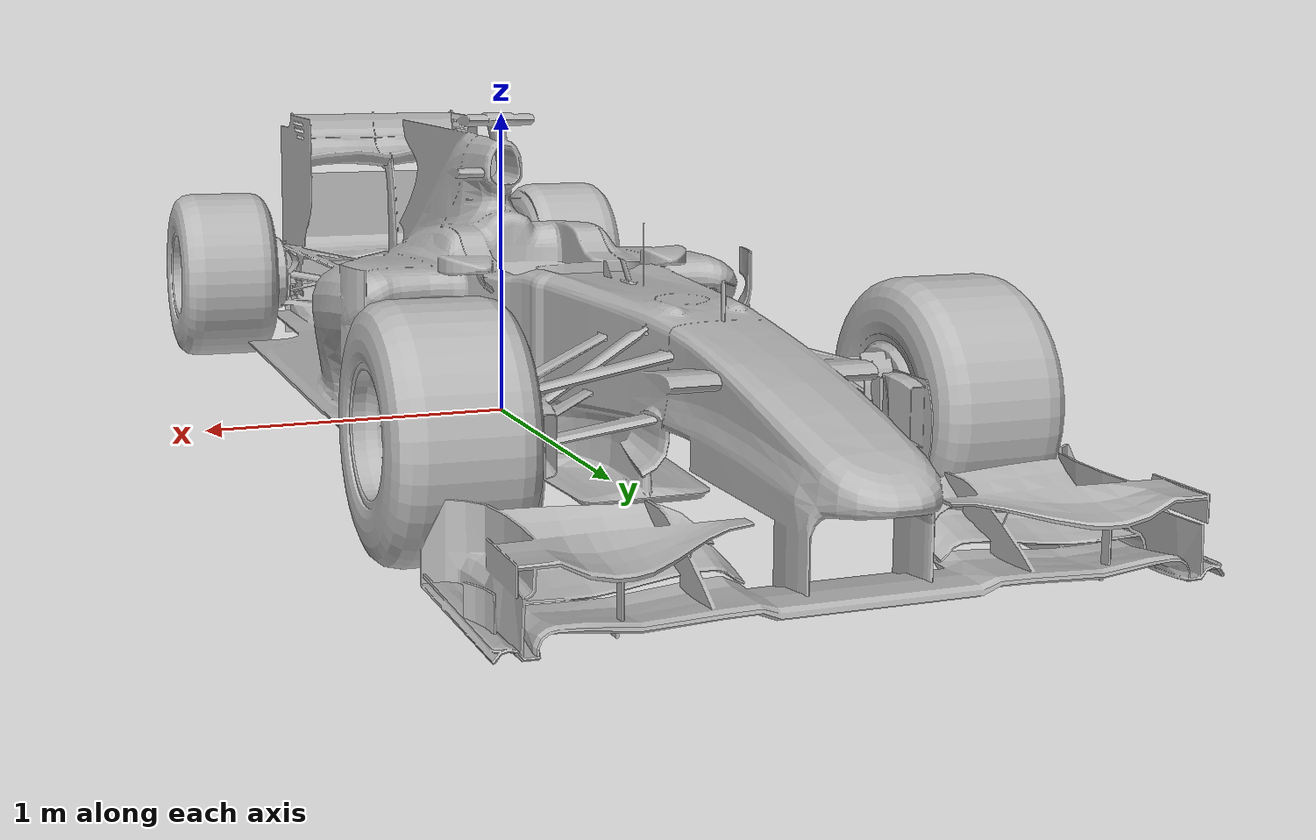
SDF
<?xml version="1.0"?>
<sdf version="1.5">

  <model name="f1_renault_camera">
    <pose>0 0 0.0 0 0 0</pose>

    <link name='base_link' />

    <joint name='chassis_link_joint' type='fixed'>
      <pose>0.0 0.0 0.0 0 0 0</pose>
      <parent>base_link</parent>
      <child>chassis_link</child>
    </joint>

    <link name='chassis_link'>
      <inertial>
        <pose>1e-06 0.07307 0.65096 0 -0 0</pose>
        <mass>1580</mass>
        <inertia>
          <ixx>1997.86</ixx>
          <ixy>-3e-05</ixy>
          <ixz>-1e-06</ixz>
          <iyy>442.769</iyy>
          <iyz>62.5206</iyz>
          <izz>2238.05</izz>
        </inertia>
      </inertial>
      <collision name='chassis_link_fixed_joint_lump__chassis_link_collision'>
        <pose>0 1.6 0.0 0 -0 1.57</pose>
        <geometry>
          <mesh>
            <scale>5 5 5</scale>
            <uri>model://f1_renault_ackerman/Renault/chasis.dae</uri>
          </mesh>
        </geometry>
        <surface>
          <contact>
            <ode />
          </contact>
          <friction>
            <ode>
              <mu>0.2</mu>
              <mu2>0.2</mu2>
            </ode>
          </friction>
        </surface>
      </collision>
      <visual name="visual">
        <pose>0 1.6 0.0 0 -0 1.57</pose>
        <geometry>
          <mesh>
            <scale>5 5 5</scale>
            <uri>model://f1_renault_ackerman/Renault/chasis.dae</uri>
        </mesh>
      </geometry>
      </visual>
      <self_collide>0</self_collide>
    </link>

    <!-- CAMERA -->
    <link name="camera_f1">
        <pose>0 0 0 0 0 0</pose>
        <inertial>
          <mass>2</mass>
            <inertia>
                <ixx>1.000000</ixx>
                <ixy>0.000000</ixy>
                <ixz>0.000000</ixz>
                <iyy>1.000000</iyy>
                <iyz>0.000000</iyz>
                <izz>1.000000</izz>
            </inertia>
        </inertial>
        <!-- Visual sphere to debug camera position-->
        <velocity_decay>
          <linear>0.000000</linear>
          <angular>0.000000</angular>
        </velocity_decay>
        <self_collide>0</self_collide>
        <kinematic>0</kinematic>
        <gravity>1</gravity>

        <sensor name='cam_f1' type='camera'>
          <pose>0 2.7 0.2 0 0 1.57</pose>
          <update_rate>20.000000</update_rate>
          <camera name='cam'>
            <horizontal_fov>1.570000</horizontal_fov>
            <image>
              <width>640</width>
              <height>480</height>
              <format>R8G8B8</format>
            </image>
            <clip>
              <near>0.100000</near>
              <far>15.000000</far>
            </clip>
          </camera>
          <plugin name="camera_controller" filename="libgazebo_ros_camera.so">
            <alwaysOn>true</alwaysOn>
            <updateRate>0.0</updateRate>
            <cameraName>camera</cameraName>
            <imageTopicName>image_raw</imageTopicName>
            <cameraInfoTopicName>camera_info</cameraInfoTopicName>
            <frameName>camera_f1</frameName>
            <hackBaseline>0.07</hackBaseline>
            <distortionK1>0.0</distortionK1>
            <distortionK2>0.0</distortionK2>
            <distortionK3>0.0</distortionK3>
            <distortionT1>0.0</distortionT1>
            <distortionT2>0.0</distortionT2>
            <ros>
                <namespace>f1ros2</namespace>
            </ros>
          </plugin>
        </sensor>

    </link>

    <joint type="fixed" name="camera_f1_joint">
        <pose>0 2.7 0.2 0 0 1.57</pose>
        <child>camera_f1</child>
        <parent>chassis_link</parent>
    </joint>

    <!-- THIRD PERSON CAMERA -->
    <link name="camera_float">
        <pose>0 0 0 0 0 0</pose>
        <inertial>
          <mass>2</mass>
            <inertia>
                <ixx>1.000000</ixx>
                <ixy>0.000000</ixy>
                <ixz>0.000000</ixz>
                <iyy>1.000000</iyy>
                <iyz>0.000000</iyz>
                <izz>1.000000</izz>
            </inertia>
        </inertial>
        <!-- Visual sphere to debug camera position-->
        <velocity_decay>
          <linear>0.000000</linear>
          <angular>0.000000</angular>
        </velocity_decay>
        <self_collide>0</self_collide>
        <kinematic>0</kinematic>
        <gravity>1</gravity>

        <sensor name='cam_float' type='camera'>
          <pose>0 -3 2 0 0.1 1.57</pose>
          <update_rate>20.000000</update_rate>
          <camera name='cam'>
            <horizontal_fov>1.570000</horizontal_fov>
            <image>
              <width>640</width>
              <height>480</height>
              <format>R8G8B8</format>
            </image>
            <clip>
              <near>0.100000</near>
              <far>15.000000</far>
            </clip>
          </camera>
          <plugin name="floating_camera_controller" filename="libgazebo_ros_camera.so">
            <alwaysOn>true</alwaysOn>
            <updateRate>0.0</updateRate>
            <cameraName>floating_camera</cameraName>
            <imageTopicName>image_raw</imageTopicName>
            <cameraInfoTopicName>camera_info</cameraInfoTopicName>
            <frameName>camera_float</frameName>
            <hackBaseline>0.07</hackBaseline>
            <distortionK1>0.0</distortionK1>
            <distortionK2>0.0</distortionK2>
            <distortionK3>0.0</distortionK3>
            <distortionT1>0.0</distortionT1>
            <distortionT2>0.0</distortionT2>
            <ros>
                <namespace>f1ros2</namespace>
            </ros>
          </plugin>
        </sensor>

    </link>

    <joint type="fixed" name="camera_float_joint">
        <pose>0 -3 2 0 0.1 1.57</pose>
        <child>camera_float</child>
        <parent>chassis_link</parent>
    </joint>

    <!-- BACK LEFT WHEEL -->
    <joint name='bl_axle' type='revolute'>
      <pose relative_to='chassis_link'>-0.775 -1.45364 0.304997 0 -0 0</pose>
      <parent>chassis_link</parent>
      <child>bl_1</child>
      <axis>
        <xyz>-1 0 0</xyz>
        <dynamics>
          <friction>12.031606150200002</friction>
        </dynamics>
      </axis>
    </joint>

    <link name='bl_1'>
      <pose relative_to='bl_axle'>0 0 0 0 -0 0</pose>
      <inertial>
        <pose>-0.0377 0 -0 0 -0 0</pose>
        <mass>24.5</mass>
        <inertia>
          <ixx>1.84514</ixx>
          <ixy>0</ixy>
          <ixz>0</ixz>
          <iyy>1.04961</iyy>
          <iyz>0</iyz>
          <izz>1.04961</izz>
        </inertia>
      </inertial>
      <collision name='bl_1_collision'>
        <pose relative_to='bl_axle'>0 0 0 0 1.5708 0</pose>
        <geometry>
          <cylinder>
            <radius>.3425</radius>
            <length>.22</length>
          </cylinder>
        </geometry>
        <surface>
          <contact>
            <ode />
          </contact>
          <friction>
            <ode>
              <mu>1.7</mu>
              <mu2>1.7</mu2>
            </ode>
          </friction>
        </surface>
      </collision>
      <visual name='bl_1_visual'>
        <pose>0.875 1.01364 0.1444 0 -0 0</pose>
        <geometry>
          <mesh>
            <scale>0.1 0.1 0.1</scale>
            <uri>model://f1_renault_ackerman/Renault/back_left.dae</uri>
          </mesh>
        </geometry>
      </visual>
      <self_collide>0</self_collide>
    </link>

    <!-- BACK RIGHT WHEEL -->
    <joint name='br_axle' type='revolute'>
      <pose relative_to='chassis_link'>0.775 -1.45364 0.304997 0 -0 0</pose>
      <parent>chassis_link</parent>
      <child>br_1</child>
      <axis>
        <xyz>-1 0 0</xyz>
        <dynamics>
          <friction>12.031606150200002</friction>
        </dynamics>
      </axis>
    </joint>

    <link name='br_1'>
      <pose relative_to='br_axle'>0 0 0 0 -0 0</pose>
      <inertial>
        <pose>-0.0377 0 -0 0 -0 0</pose>
        <mass>24.5</mass>
        <inertia>
          <ixx>1.84514</ixx>
          <ixy>0</ixy>
          <ixz>0</ixz>
          <iyy>1.04961</iyy>
          <iyz>0</iyz>
          <izz>1.04961</izz>
        </inertia>
      </inertial>
      <collision name='br_1_collision'>
        <pose relative_to='br_axle'>0 0 0 0 1.5708 0</pose>
        <geometry>
          <cylinder>
            <radius>.3425</radius>
            <length>.22</length>
          </cylinder>
        </geometry>
        <surface>
          <contact>
            <ode />
          </contact>
          <friction>
            <ode>
              <mu>1.7</mu>
              <mu2>1.7</mu2>
            </ode>
          </friction>
        </surface>
      </collision>
      <visual name='br_1_visual'>
        <pose>-0.875 1.01364 0.1444 0 -0 0</pose>
        <geometry>
          <mesh>
            <scale>0.1 0.1 0.1</scale>
            <uri>model://f1_renault_ackerman/Renault/back_right.dae</uri>
          </mesh>
        </geometry>
      </visual>
      <self_collide>0</self_collide>
    </link>

    <!-- FRONT LEFT WHEEL -->
    <joint name='l_steer' type='revolute'>
      <pose relative_to='chassis_link'>-0.7 1.61736 0.324997 0 -0 0</pose>
      <parent>chassis_link</parent>
      <child>l_steer_1</child>
      <axis>
        <xyz>0 0 1</xyz>
        <limit>
          <lower>-0.95</lower>
          <upper>0.95</upper>
        </limit>
        <dynamics>
          <friction>18.0474092253</friction>
        </dynamics>
      </axis>
    </joint>

    <link name='l_steer_1'>
      <pose relative_to='l_steer'>0 0 0 0 -0 0</pose>
      <inertial>
        <pose>0.003381 0 0.02162 0 -0 0</pose>
        <mass>1</mass>
        <inertia>
          <ixx>1</ixx>
          <ixy>0</ixy>
          <ixz>0</ixz>
          <iyy>1</iyy>
          <iyz>0</iyz>
          <izz>1</izz>
        </inertia>
      </inertial>
      <self_collide>0</self_collide>
    </link>

    <joint name='fl_axle' type='revolute'>
      <pose relative_to='l_steer_1'>-0.05 0 0 0 -0 0</pose>
      <parent>l_steer_1</parent>
      <child>fl_1</child>
      <axis>
        <xyz>-1 0 0</xyz>
        <dynamics>
          <friction>12.031606150200002</friction>
        </dynamics>
      </axis>
    </joint>

    <link name='fl_1'>
      <pose relative_to='fl_axle'>0 0 0 0 -0 0</pose>
      <inertial>
        <pose>-0.0377 0 -0 0 -0 0</pose>
        <mass>24.5</mass>
        <inertia>
          <ixx>1.84514</ixx>
          <ixy>0</ixy>
          <ixz>0</ixz>
          <iyy>1.04961</iyy>
          <iyz>0</iyz>
          <izz>1.04961</izz>
        </inertia>
      </inertial>
      <collision name='fl_1_collision'>
        <pose>0.875 -1.5174 0.1444 0 -0 0</pose>
        <geometry>
          <mesh>
            <scale>0.001 0.001 0.001</scale>
            <uri>model://autocar/meshes/fl_1.stl</uri>
          </mesh>
        </geometry>
        <surface>
          <contact>
            <ode />
          </contact>
          <friction>
            <ode>
              <mu>1.1</mu>
              <mu2>1.1</mu2>
            </ode>
          </friction>
        </surface>
      </collision>
      <visual name='fl_1_visual'>
        <pose>0.875 -1.5174 0.1444 0 -0 0</pose>
        <geometry>
          <mesh>
            <scale>0.1 0.1 0.1</scale>
            <uri>model://f1_renault_ackerman/Renault/front_left.dae</uri>
          </mesh>
        </geometry>
      </visual>
      <self_collide>0</self_collide>
    </link>

    <!-- FRONT RIGHT WHEEL -->
    <joint name='r_steer' type='revolute'>
      <pose relative_to='chassis_link'>0.705 1.61736 0.324997 0 -0 0</pose>
      <parent>chassis_link</parent>
      <child>r_steer_1</child>
      <axis>
        <xyz>0 0 1</xyz>
        <limit>
          <lower>-0.95</lower>
          <upper>0.95</upper>
        </limit>
        <dynamics>
          <damping>0.01</damping>
          <friction>18.0474092253</friction>
        </dynamics>
      </axis>
    </joint>

    <link name='r_steer_1'>
      <pose relative_to='r_steer'>0 0 0 0 -0 0</pose>
      <inertial>
        <pose>0.003381 0 0.02162 0 -0 0</pose>
        <mass>1</mass>
        <inertia>
          <ixx>1</ixx>
          <ixy>0</ixy>
          <ixz>0</ixz>
          <iyy>1</iyy>
          <iyz>0</iyz>
          <izz>1</izz>
        </inertia>
      </inertial>
      <self_collide>0</self_collide>
    </link>

    <joint name='fr_axle' type='revolute'>
      <pose relative_to='r_steer_1'>0.05 0 0 0 -0 0</pose>
      <parent>r_steer_1</parent>
      <child>fr_1</child>
      <axis>
        <xyz>-1 0 0</xyz>
        <dynamics>
          <friction>12.031606150200002</friction>
        </dynamics>
      </axis>
    </joint>
    <link name='fr_1'>
      <pose relative_to='fr_axle'>0 0 0 0 -0 0</pose>
      <inertial>
        <pose>-0.0377 0 -0 0 -0 0</pose>
        <mass>24.5</mass>
        <inertia>
          <ixx>1.84514</ixx>
          <ixy>0</ixy>
          <ixz>0</ixz>
          <iyy>1.04961</iyy>
          <iyz>0</iyz>
          <izz>1.04961</izz>
        </inertia>
      </inertial>
      <collision name='fr_1_collision'>
        <pose>-0.875 -1.5174 0.1444 0 -0 0</pose>
        <geometry>
          <mesh>
            <scale>0.001 0.001 0.001</scale>
            <uri>model://autocar/meshes/fr_1.stl</uri>
          </mesh>
        </geometry>
        <surface>
          <contact>
            <ode />
          </contact>
          <friction>
            <ode>
              <mu>1.7</mu>
              <mu2>1.7</mu2>
            </ode>
          </friction>
        </surface>
      </collision>
      <visual name='fr_1_visual'>
        <pose>-0.875 -1.5174 0.1444 0 -0 0</pose>
        <geometry>
          <mesh>
            <scale>0.1 0.1 0.1</scale>
            <uri>model://f1_renault_ackerman/Renault/front_right.dae</uri>
          </mesh>
        </geometry>
      </visual>
      <self_collide>0</self_collide>
    </link>

    <!-- STEERING WHEEL -->
    <link name="steering_wheel" />

    <joint name="steering_joint" type="revolute">
      <pose>-0.002 0 0 0 0 0</pose>
      <parent>chassis_link</parent>
      <child>steering_wheel</child>
      <axis>
        <xyz>-0.964118 0.000768 0.265556</xyz>
        <limit>
          <lower>-100</lower>
          <upper>100</upper>
        </limit>
        <dynamics>
          <damping>1.0</damping>
        </dynamics>
        <use_parent_model_frame>true</use_parent_model_frame>
      </axis>
      <physics>
        <ode>
          <cfm_damping>1</cfm_damping>
        </ode>
      </physics>
    </joint>

    <plugin name='ackermann_drive' filename='libgazebo_ros_ackermann_drive.so'>

      <ros>
        <namespace>f1ros2</namespace>
        <remapping>cmd_vel:=cmd_vel</remapping>
        <remapping>odom:=odom</remapping>
        <remapping>distance:=distance</remapping>
      </ros>

      <update_rate>100.0</update_rate>

      <!-- wheels -->
      <front_left_joint>fl_axle</front_left_joint>
      <front_right_joint>fr_axle</front_right_joint>
      <rear_left_joint>bl_axle</rear_left_joint>
      <rear_right_joint>br_axle</rear_right_joint>
      <left_steering_joint>l_steer</left_steering_joint>
      <right_steering_joint>r_steer</right_steering_joint>
      <steering_wheel_joint>steering_joint</steering_wheel_joint>

      <!-- Max absolute steer angle for tyre in radians-->
      <!-- Any cmd_vel angular z greater than this would be capped -->
      <max_steer>0.52</max_steer>

      <!-- Max absolute steering angle of steering wheel -->
      <!-- Max absolute steering angle of steering wheel -->
      <max_steering_angle>7.85</max_steering_angle>

      <!-- Max absolute linear speed in m/s -->
      <max_speed>50</max_speed>

      <!-- PID tuning -->
      <left_steering_pid_gain>1000 0 1.5</left_steering_pid_gain>
      <left_steering_i_range>0 0</left_steering_i_range>
      <right_steering_pid_gain>1000 0 1.5</right_steering_pid_gain>
      <right_steering_i_range>0 0</right_steering_i_range>
      <linear_velocity_pid_gain>1000 0 1.5</linear_velocity_pid_gain>
      <linear_velocity_i_range>0 0</linear_velocity_i_range>

      <!-- output -->
      <publish_odom>true</publish_odom>
      <publish_odom_tf>true</publish_odom_tf>
      <publish_wheel_tf>true</publish_wheel_tf>
      <publish_distance>true</publish_distance>

      <odometry_frame>odom</odometry_frame>
      <robot_base_frame>base_link</robot_base_frame>

    </plugin>

  </model>

</sdf>
